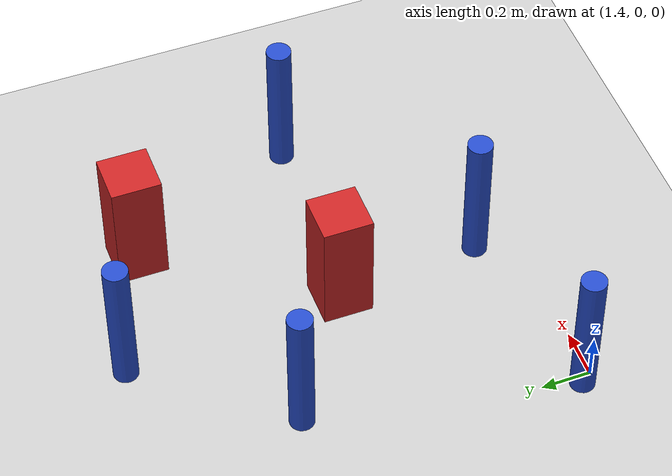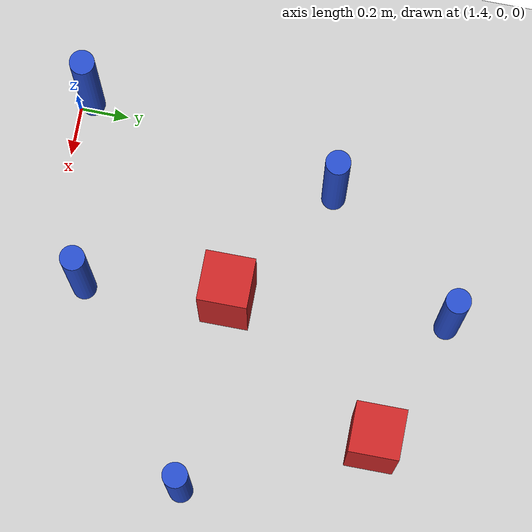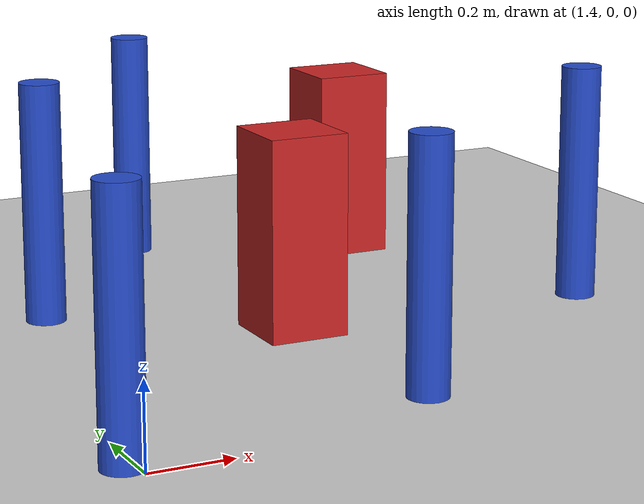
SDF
<sdf version="1.6">
 <world name="default">
  <model name="ground_plane">
   <static>1</static>
   <link name="link">
    <collision name="collision">
     <geometry><plane><normal>0 0 1</normal><size>100 100</size></plane></geometry>
     <surface><friction><ode><mu>100</mu><mu2>50</mu2></ode></friction></surface>
    </collision>
    <visual name="visual">
     <cast_shadows>0</cast_shadows>
     <geometry><plane><normal>0 0 1</normal><size>100 100</size></plane></geometry>
     <material>
      <ambient>1.0 1.0 1.0 1.0</ambient>
      <diffuse>0.8 0.8 0.8 1.0</diffuse>
      <specular>0.01 0.01 0.01 1.000000</specular>
     </material>
    </visual>
   </link>
  </model>
  <model name="pole_obstacle111">
   <static>true</static>
   <pose>2.88608512881 0.717811487844 7.38925637345e-09 -8.471706928e-08 1.24976765177e-08 -1.74513093012e-07</pose>
   <link name="link">
    <pose>0 0 0.3 0 -0 0</pose>
    <inertial>
     <mass>1</mass>
     <inertia><ixx>0.145833</ixx><ixy>0</ixy><ixz>0</ixz><iyy>0.145833</iyy><iyz>0</iyz><izz>0.125</izz></inertia>
    </inertial>
    <collision name="collision">
     <geometry><cylinder><radius>0.05</radius><length>.6</length></cylinder></geometry>
    </collision>
    <visual name="visual">
     <geometry><cylinder><radius>0.05</radius><length>.6</length></cylinder></geometry>
     <material>
      <script><name>Gazebo/Blue</name><uri>file://media/materials/scripts/gazebo.material</uri></script>
     </material>
    </visual>
   </link>
  </model>
  <model name="pole_obstacle119">
   <static>true</static>
   <pose>1.5794283373 1.10435585413 7.38925637345e-09 -8.471706928e-08 1.24976765079e-08 -1.74513093017e-07</pose>
   <link name="link">
    <pose>0 0 0.3 0 -0 0</pose>
    <inertial>
     <mass>1</mass>
     <inertia><ixx>0.145833</ixx><ixy>0</ixy><ixz>0</ixz><iyy>0.145833</iyy><iyz>0</iyz><izz>0.125</izz></inertia>
    </inertial>
    <collision name="collision">
     <geometry><cylinder><radius>0.05</radius><length>.6</length></cylinder></geometry>
    </collision>
    <visual name="visual">
     <geometry><cylinder><radius>0.05</radius><length>.6</length></cylinder></geometry>
     <material>
      <script><name>Gazebo/Blue</name><uri>file://media/materials/scripts/gazebo.material</uri></script>
     </material>
    </visual>
   </link>
  </model>
  <model name="pole_obstacle171">
   <static>true</static>
   <pose>1.36975782374 0.0469841432358 7.38925637345e-09 -8.47170692799e-08 1.24976765035e-08 -1.7451309302e-07</pose>
   <link name="link">
    <pose>0 0 0.3 0 -0 0</pose>
    <inertial>
     <mass>1</mass>
     <inertia><ixx>0.145833</ixx><ixy>0</ixy><ixz>0</ixz><iyy>0.145833</iyy><iyz>0</iyz><izz>0.125</izz></inertia>
    </inertial>
    <collision name="collision">
     <geometry><cylinder><radius>0.05</radius><length>.6</length></cylinder></geometry>
    </collision>
    <visual name="visual">
     <geometry><cylinder><radius>0.05</radius><length>.6</length></cylinder></geometry>
     <material>
      <script><name>Gazebo/Blue</name><uri>file://media/materials/scripts/gazebo.material</uri></script>
     </material>
    </visual>
   </link>
  </model>
  <model name="square_post_obstacle181">
   <static>true</static>
   <pose>2.56380817241 1.44251558556 1.91545236811e-07 -7.35059704564e-06 1.12565212e-07 2.39332434364e-05</pose>
   <link name="link">
    <pose>0 0 0.25 0 -0 0</pose>
    <inertial>
     <mass>100</mass>
     <inertia>
      <ixx>0.166667</ixx>
      <ixy>0</ixy>
      <ixz>0</ixz>
      <iyy>0.166667</iyy>
      <iyz>0</iyz>
      <izz>0.166667</izz>
     </inertia>
    </inertial>
    <collision name="collision"><geometry><box><size>.2 .2 .5</size></box></geometry></collision>
    <visual name="visual">
     <geometry><box><size>.2 .2 .5</size></box></geometry>
     <material>
      <script><name>Gazebo/Red</name><uri>file://media/materials/scripts/gazebo.material</uri></script>
     </material>
    </visual>
   </link>
  </model>
  <model name="square_post_obstacle198">
   <static>true</static>
   <pose>2.09262812035 0.759592621214 1.91545236811e-07 -7.35059704564e-06 1.12565212e-07 2.39332434364e-05</pose>
   <link name="link">
    <pose>0 0 0.25 0 -0 0</pose>
    <inertial>
     <mass>100</mass>
     <inertia>
      <ixx>0.166667</ixx>
      <ixy>0</ixy>
      <ixz>0</ixz>
      <iyy>0.166667</iyy>
      <iyz>0</iyz>
      <izz>0.166667</izz>
     </inertia>
    </inertial>
    <collision name="collision"><geometry><box><size>.2 .2 .5</size></box></geometry></collision>
    <visual name="visual">
     <geometry><box><size>.2 .2 .5</size></box></geometry>
     <material>
      <script><name>Gazebo/Red</name><uri>file://media/materials/scripts/gazebo.material</uri></script>
     </material>
    </visual>
   </link>
  </model>
  <model name="pole_obstacle219">
   <static>true</static>
   <pose>2.03022795542 1.6546452367 7.38925637345e-09 -8.471706928e-08 1.24976765091e-08 -1.74513093016e-07</pose>
   <link name="link">
    <pose>0 0 0.3 0 -0 0</pose>
    <inertial>
     <mass>1</mass>
     <inertia><ixx>0.145833</ixx><ixy>0</ixy><ixz>0</ixz><iyy>0.145833</iyy><iyz>0</iyz><izz>0.125</izz></inertia>
    </inertial>
    <collision name="collision">
     <geometry><cylinder><radius>0.05</radius><length>.6</length></cylinder></geometry>
    </collision>
    <visual name="visual">
     <geometry><cylinder><radius>0.05</radius><length>.6</length></cylinder></geometry>
     <material>
      <script><name>Gazebo/Blue</name><uri>file://media/materials/scripts/gazebo.material</uri></script>
     </material>
    </visual>
   </link>
  </model>
  <model name="pole_obstacle222">
   <static>true</static>
   <pose>2.14049712722 0.168383491581 7.38925637345e-09 -8.471706928e-08 1.2497676517e-08 -1.74513093012e-07</pose>
   <link name="link">
    <pose>0 0 0.3 0 -0 0</pose>
    <inertial>
     <mass>1</mass>
     <inertia><ixx>0.145833</ixx><ixy>0</ixy><ixz>0</ixz><iyy>0.145833</iyy><iyz>0</iyz><izz>0.125</izz></inertia>
    </inertial>
    <collision name="collision">
     <geometry><cylinder><radius>0.05</radius><length>.6</length></cylinder></geometry>
    </collision>
    <visual name="visual">
     <geometry><cylinder><radius>0.05</radius><length>.6</length></cylinder></geometry>
     <material>
      <script><name>Gazebo/Blue</name><uri>file://media/materials/scripts/gazebo.material</uri></script>
     </material>
    </visual>
   </link>
  </model>
 </world>
</sdf>
